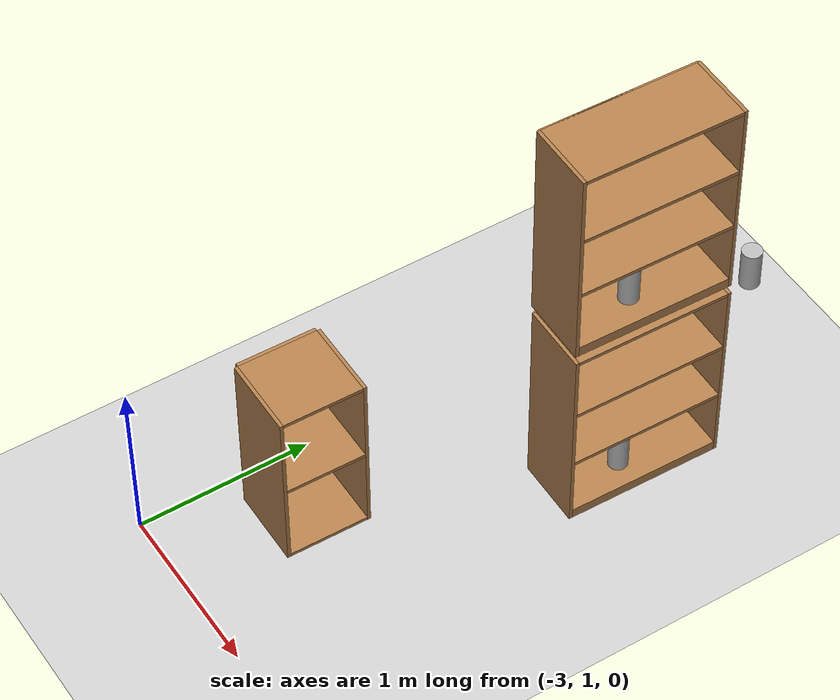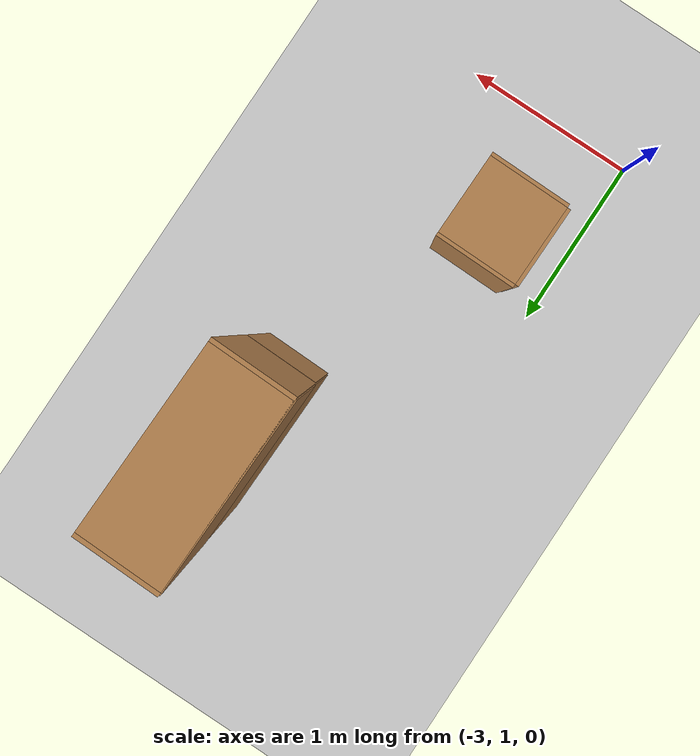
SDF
<sdf version="1.7">
 <world name="default">
  <physics type="ode">
   <max_step_size>0.001</max_step_size>
   <real_time_factor>1</real_time_factor>
   <real_time_update_rate>1000</real_time_update_rate>
  </physics>
  <light name="sun" type="directional">
   <pose>0 0 10 0 -0 0</pose>
   <diffuse>0.8 0.8 0.8 1</diffuse>
   <specular>0.2 0.2 0.2 1</specular>
   <attenuation>
    <range>1000</range>
    <constant>0.9</constant>
    <linear>0.01</linear>
    <quadratic>0.001</quadratic>
   </attenuation>
   <direction>-0.5 0.1 -0.9</direction>
   <spot><inner_angle>0</inner_angle><outer_angle>0</outer_angle><falloff>0</falloff></spot>
  </light>
  <model name="ground_plane">
   <static>1</static>
   <link name="link">
    <collision name="collision">
     <geometry><plane><normal>0 0 1</normal><size>100 100</size></plane></geometry>
     <surface>
      <contact><collide_bitmask>65535</collide_bitmask></contact>
      <friction><ode><mu>100</mu><mu2>50</mu2></ode></friction>
     </surface>
    </collision>
    <visual name="visual">
     <cast_shadows>0</cast_shadows>
     <geometry><plane><normal>0 0 1</normal><size>100 100</size></plane></geometry>
     <material>
      <script><uri>file://media/materials/scripts/gazebo.material</uri><name>Gazebo/Grey</name></script>
     </material>
    </visual>
   </link>
  </model>
  <gravity>0 0 -9.8</gravity>
  <magnetic_field>6e-06 2.3e-05 -4.2e-05</magnetic_field>
  <atmosphere type="adiabatic"/>
  <scene><ambient>0.4 0.4 0.4 1</ambient><background>0.7 0.7 0.7 1</background><shadows>1</shadows></scene>
  <spherical_coordinates>
   <surface_model>EARTH_WGS84</surface_model>
   <latitude_deg>0</latitude_deg>
   <longitude_deg>0</longitude_deg>
   <elevation>0</elevation>
   <heading_deg>0</heading_deg>
  </spherical_coordinates>
  <model name="cabinet">
   <static>1</static>
   <link name="cabinet_bottom_plate">
    <inertial>
     <pose>0 0 -1 0 -0 0</pose>
     <inertia><ixx>2.05</ixx><ixy>0</ixy><ixz>0</ixz><iyy>2.05</iyy><iyz>0</iyz><izz>2.05</izz></inertia>
     <mass>25</mass>
    </inertial>
    <collision name="cabinet_bottom_plate_geom">
     <pose>0 0 0.01 0 -0 0</pose>
     <geometry><box><size>0.45 0.45 0.02</size></box></geometry>
    </collision>
    <visual name="cabinet_bottom_plate_geom_visual">
     <pose>0 0 0.01 0 -0 0</pose>
     <geometry><box><size>0.45 0.45 0.02</size></box></geometry>
     <material>
      <script><uri>file://media/materials/scripts/gazebo.material</uri><name>Gazebo/Wood</name></script>
     </material>
    </visual>
    <collision name="cabinet_bottom_plate_geom_cabinet_back_plate">
     <pose>0.235 0 0.51 0 -0 0</pose>
     <geometry><box><size>0.02 0.45 1.02</size></box></geometry>
    </collision>
    <visual name="cabinet_bottom_plate_geom_cabinet_back_plate_visual">
     <pose>0.235 0 0.51 0 -0 0</pose>
     <geometry><box><size>0.02 0.45 1.02</size></box></geometry>
     <material>
      <script><uri>file://media/materials/scripts/gazebo.material</uri><name>Gazebo/Wood</name></script>
     </material>
    </visual>
    <collision name="cabinet_bottom_plate_geom_cabinet_left_plate">
     <pose>0 0.235 0.51 0 -0 0</pose>
     <geometry><box><size>0.45 0.02 1.02</size></box></geometry>
    </collision>
    <visual name="cabinet_bottom_plate_geom_cabinet_left_plate_visual">
     <pose>0 0.235 0.51 0 -0 0</pose>
     <geometry><box><size>0.45 0.02 1.02</size></box></geometry>
     <material>
      <script><uri>file://media/materials/scripts/gazebo.material</uri><name>Gazebo/Wood</name></script>
     </material>
    </visual>
    <collision name="cabinet_bottom_plate_geom_cabinet_middle_plate">
     <pose>0 0 0.51 0 -0 0</pose>
     <geometry><box><size>0.45 0.45 0.02</size></box></geometry>
    </collision>
    <visual name="cabinet_bottom_plate_geom_cabinet_middle_plate_visual">
     <pose>0 0 0.51 0 -0 0</pose>
     <geometry><box><size>0.45 0.45 0.02</size></box></geometry>
     <material>
      <script><uri>file://media/materials/scripts/gazebo.material</uri><name>Gazebo/Wood</name></script>
     </material>
    </visual>
    <collision name="cabinet_bottom_plate_geom_cabinet_right_plate">
     <pose>0 -0.235 0.51 0 -0 0</pose>
     <geometry><box><size>0.45 0.02 1.02</size></box></geometry>
    </collision>
    <visual name="cabinet_bottom_plate_geom_cabinet_right_plate_visual">
     <pose>0 -0.235 0.51 0 -0 0</pose>
     <geometry><box><size>0.45 0.02 1.02</size></box></geometry>
     <material>
      <script><uri>file://media/materials/scripts/gazebo.material</uri><name>Gazebo/Wood</name></script>
     </material>
    </visual>
    <collision name="cabinet_bottom_plate_geom_cabinet_top_plate">
     <pose>0 0 1.01 0 -0 0</pose>
     <geometry><box><size>0.45 0.45 0.02</size></box></geometry>
    </collision>
    <visual name="cabinet_bottom_plate_geom_cabinet_top_plate_visual">
     <pose>0 0 1.01 0 -0 0</pose>
     <geometry><box><size>0.45 0.45 0.02</size></box></geometry>
     <material>
      <script><uri>file://media/materials/scripts/gazebo.material</uri><name>Gazebo/Wood</name></script>
     </material>
    </visual>
   </link>
   <pose>-2.55456 1.7392 0.101127 0 -0 3.12767</pose>
  </model>
  <model name="beer">
   <link name="link">
    <pose>0 0 0.115 0 -0 0</pose>
    <inertial>
     <mass>0.39</mass>
     <inertia><ixx>0.00058</ixx><ixy>0</ixy><ixz>0</ixz><iyy>0.00058</iyy><iyz>0</iyz><izz>0.00019</izz></inertia>
    </inertial>
    <collision name="collision">
     <geometry><cylinder><radius>0.055</radius><length>0.23</length></cylinder></geometry>
    </collision>
    <visual name="visual">
     <geometry><cylinder><radius>0.055</radius><length>0.23</length></cylinder></geometry>
     <material>
      <script>
       <uri>model://beer/materials/scripts</uri>
       <uri>model://beer/materials/textures</uri>
       <name>Beer/Diffuse</name>
      </script>
     </material>
    </visual>
   </link>
   <pose>-1.92617 3.9971 1.06748 0.00794 0.002814 -0.000309</pose>
  </model>
  <model name="bookshelf">
   <static>1</static>
   <link name="link">
    <inertial><mass>1</mass></inertial>
    <collision name="back">
     <pose>0 0.005 0.6 0 -0 0</pose>
     <geometry><box><size>0.9 0.01 1.2</size></box></geometry>
    </collision>
    <visual name="visual1">
     <pose>0 0.005 0.6 0 -0 0</pose>
     <geometry><box><size>0.9 0.01 1.2</size></box></geometry>
     <material>
      <script><uri>file://media/materials/scripts/gazebo.material</uri><name>Gazebo/Wood</name></script>
     </material>
    </visual>
    <collision name="left_side">
     <pose>0.45 -0.195 0.6 0 -0 0</pose>
     <geometry><box><size>0.02 0.4 1.2</size></box></geometry>
    </collision>
    <visual name="visual2">
     <pose>0.45 -0.195 0.6 0 -0 0</pose>
     <geometry><box><size>0.02 0.4 1.2</size></box></geometry>
     <material>
      <script><uri>file://media/materials/scripts/gazebo.material</uri><name>Gazebo/Wood</name></script>
     </material>
    </visual>
    <collision name="right_side">
     <pose>-0.45 -0.195 0.6 0 -0 0</pose>
     <geometry><box><size>0.02 0.4 1.2</size></box></geometry>
    </collision>
    <visual name="visual3">
     <pose>-0.45 -0.195 0.6 0 -0 0</pose>
     <geometry><box><size>0.02 0.4 1.2</size></box></geometry>
     <material>
      <script><uri>file://media/materials/scripts/gazebo.material</uri><name>Gazebo/Wood</name></script>
     </material>
    </visual>
    <collision name="bottom">
     <pose>0 -0.195 0.03 0 -0 0</pose>
     <geometry><box><size>0.88 0.4 0.06</size></box></geometry>
    </collision>
    <visual name="visual4">
     <pose>0 -0.195 0.03 0 -0 0</pose>
     <geometry><box><size>0.88 0.4 0.06</size></box></geometry>
     <material>
      <script><uri>file://media/materials/scripts/gazebo.material</uri><name>Gazebo/Wood</name></script>
     </material>
    </visual>
    <collision name="top">
     <pose>0 -0.195 1.19 0 -0 0</pose>
     <geometry><box><size>0.88 0.4 0.02</size></box></geometry>
    </collision>
    <visual name="visual5">
     <pose>0 -0.195 1.19 0 -0 0</pose>
     <geometry><box><size>0.88 0.4 0.02</size></box></geometry>
     <material>
      <script><uri>file://media/materials/scripts/gazebo.material</uri><name>Gazebo/Wood</name></script>
     </material>
    </visual>
    <collision name="low_shelf">
     <pose>0 -0.195 0.43 0 -0 0</pose>
     <geometry><box><size>0.88 0.4 0.02</size></box></geometry>
    </collision>
    <visual name="visual6">
     <pose>0 -0.195 0.43 0 -0 0</pose>
     <geometry><box><size>0.88 0.4 0.02</size></box></geometry>
     <material>
      <script><uri>file://media/materials/scripts/gazebo.material</uri><name>Gazebo/Wood</name></script>
     </material>
    </visual>
    <collision name="high_shelf">
     <pose>0 -0.195 0.8 0 -0 0</pose>
     <geometry><box><size>0.88 0.4 0.02</size></box></geometry>
    </collision>
    <visual name="visual7">
     <pose>0 -0.195 0.8 0 -0 0</pose>
     <geometry><box><size>0.88 0.4 0.02</size></box></geometry>
     <material>
      <script><uri>file://media/materials/scripts/gazebo.material</uri><name>Gazebo/Wood</name></script>
     </material>
    </visual>
   </link>
   <pose>-2.22453 3.34702 0 0 -0 1.5503</pose>
  </model>
  <model name="bookshelf_0">
   <static>1</static>
   <link name="link">
    <inertial><mass>1</mass></inertial>
    <collision name="back">
     <pose>0 0.005 0.6 0 -0 0</pose>
     <geometry><box><size>0.9 0.01 1.2</size></box></geometry>
    </collision>
    <visual name="visual1">
     <pose>0 0.005 0.6 0 -0 0</pose>
     <geometry><box><size>0.9 0.01 1.2</size></box></geometry>
     <material>
      <script><uri>file://media/materials/scripts/gazebo.material</uri><name>Gazebo/Wood</name></script>
     </material>
    </visual>
    <collision name="left_side">
     <pose>0.45 -0.195 0.6 0 -0 0</pose>
     <geometry><box><size>0.02 0.4 1.2</size></box></geometry>
    </collision>
    <visual name="visual2">
     <pose>0.45 -0.195 0.6 0 -0 0</pose>
     <geometry><box><size>0.02 0.4 1.2</size></box></geometry>
     <material>
      <script><uri>file://media/materials/scripts/gazebo.material</uri><name>Gazebo/Wood</name></script>
     </material>
    </visual>
    <collision name="right_side">
     <pose>-0.45 -0.195 0.6 0 -0 0</pose>
     <geometry><box><size>0.02 0.4 1.2</size></box></geometry>
    </collision>
    <visual name="visual3">
     <pose>-0.45 -0.195 0.6 0 -0 0</pose>
     <geometry><box><size>0.02 0.4 1.2</size></box></geometry>
     <material>
      <script><uri>file://media/materials/scripts/gazebo.material</uri><name>Gazebo/Wood</name></script>
     </material>
    </visual>
    <collision name="bottom">
     <pose>0 -0.195 0.03 0 -0 0</pose>
     <geometry><box><size>0.88 0.4 0.06</size></box></geometry>
    </collision>
    <visual name="visual4">
     <pose>0 -0.195 0.03 0 -0 0</pose>
     <geometry><box><size>0.88 0.4 0.06</size></box></geometry>
     <material>
      <script><uri>file://media/materials/scripts/gazebo.material</uri><name>Gazebo/Wood</name></script>
     </material>
    </visual>
    <collision name="top">
     <pose>0 -0.195 1.19 0 -0 0</pose>
     <geometry><box><size>0.88 0.4 0.02</size></box></geometry>
    </collision>
    <visual name="visual5">
     <pose>0 -0.195 1.19 0 -0 0</pose>
     <geometry><box><size>0.88 0.4 0.02</size></box></geometry>
     <material>
      <script><uri>file://media/materials/scripts/gazebo.material</uri><name>Gazebo/Wood</name></script>
     </material>
    </visual>
    <collision name="low_shelf">
     <pose>0 -0.195 0.43 0 -0 0</pose>
     <geometry><box><size>0.88 0.4 0.02</size></box></geometry>
    </collision>
    <visual name="visual6">
     <pose>0 -0.195 0.43 0 -0 0</pose>
     <geometry><box><size>0.88 0.4 0.02</size></box></geometry>
     <material>
      <script><uri>file://media/materials/scripts/gazebo.material</uri><name>Gazebo/Wood</name></script>
     </material>
    </visual>
    <collision name="high_shelf">
     <pose>0 -0.195 0.8 0 -0 0</pose>
     <geometry><box><size>0.88 0.4 0.02</size></box></geometry>
    </collision>
    <visual name="visual7">
     <pose>0 -0.195 0.8 0 -0 0</pose>
     <geometry><box><size>0.88 0.4 0.02</size></box></geometry>
     <material>
      <script><uri>file://media/materials/scripts/gazebo.material</uri><name>Gazebo/Wood</name></script>
     </material>
    </visual>
   </link>
   <pose>-2.22714 3.34441 1.25153 0 -0 1.54809</pose>
  </model>
  <model name="beer_0">
   <link name="link">
    <pose>0 0 0.115 0 -0 0</pose>
    <inertial>
     <mass>0.39</mass>
     <inertia><ixx>0.00058</ixx><ixy>0</ixy><ixz>0</ixz><iyy>0.00058</iyy><iyz>0</iyz><izz>0.00019</izz></inertia>
    </inertial>
    <collision name="collision">
     <geometry><cylinder><radius>0.055</radius><length>0.23</length></cylinder></geometry>
    </collision>
    <visual name="visual">
     <geometry><cylinder><radius>0.055</radius><length>0.23</length></cylinder></geometry>
     <material>
      <script>
       <uri>model://beer/materials/scripts</uri>
       <uri>model://beer/materials/textures</uri>
       <name>Beer/Diffuse</name>
      </script>
     </material>
    </visual>
   </link>
   <pose>-1.9903 3.28782 1.31153 3.3e-05 -8e-06 0.00023</pose>
  </model>
  <model name="beer_1">
   <link name="link">
    <pose>0 0 0.115 0 -0 0</pose>
    <inertial>
     <mass>0.39</mass>
     <inertia><ixx>0.00058</ixx><ixy>0</ixy><ixz>0</ixz><iyy>0.00058</iyy><iyz>0</iyz><izz>0.00019</izz></inertia>
    </inertial>
    <collision name="collision">
     <geometry><cylinder><radius>0.055</radius><length>0.23</length></cylinder></geometry>
    </collision>
    <visual name="visual">
     <geometry><cylinder><radius>0.055</radius><length>0.23</length></cylinder></geometry>
     <material>
      <script>
       <uri>model://beer/materials/scripts</uri>
       <uri>model://beer/materials/textures</uri>
       <name>Beer/Diffuse</name>
      </script>
     </material>
    </visual>
   </link>
   <pose>-1.97786 3.27619 0.059992 3.2e-05 -2.7e-05 8.6e-05</pose>
  </model>
 </world>
</sdf>
